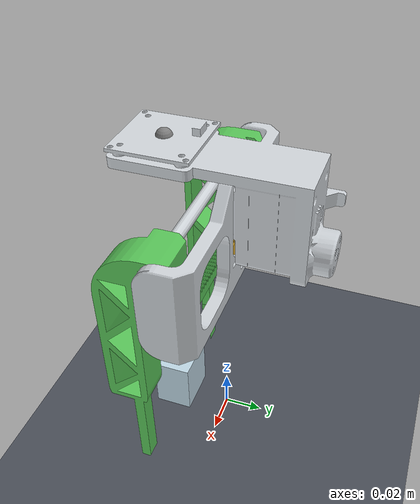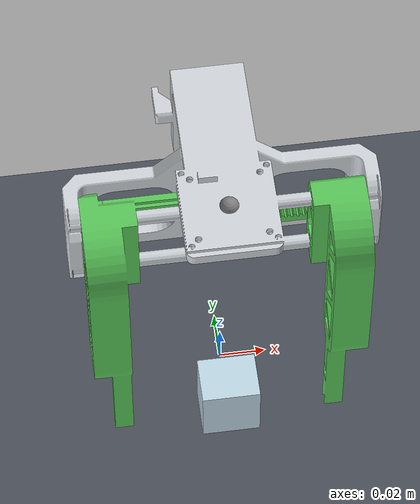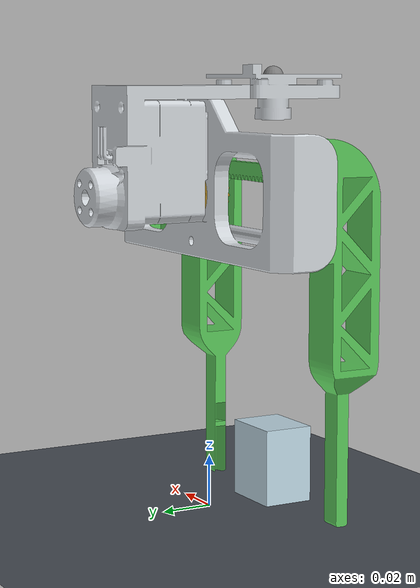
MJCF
<mujoco model="microscope_slide_gripper">
  <compiler angle="degree" autolimits="true"/>
  <option timestep="0.002" integrator="implicitfast"/>

  <include file="gripper_assets.xml"/>

  <asset>
    <texture name="grid" type="2d" builtin="checker" rgb1="0.25 0.27 0.30"
             rgb2="0.32 0.34 0.38" width="512" height="512"/>
    <material name="grid" texture="grid" texrepeat="6 6" reflectance="0.1"/>
    <texture name="sky" type="skybox" builtin="gradient" rgb1="0.35 0.42 0.52"
             rgb2="0.05 0.06 0.08" width="256" height="256"/>
  </asset>

  <visual>
    <global offwidth="1600" offheight="1200"/>
    <quality shadowsize="4096"/>
  </visual>

  <worldbody>
    <light pos="0.3 -0.4 0.8" dir="-0.3 0.4 -0.8" directional="true" diffuse="0.7 0.7 0.7"/>
    <light pos="-0.4 -0.2 0.6" dir="0.4 0.2 -0.6" diffuse="0.35 0.35 0.35"/>
    <geom name="floor" type="plane" size="0.6 0.6 0.01" material="grid"
          friction="1.0 0.01 0.001"/>

    <!-- gripper held above the bench, jaws pointing down (-Y of the CAD frame -> -Z world) -->
    <body name="sg_mount" pos="0 0 0.1225" euler="90 0 0">
      <joint name="lift" type="slide" axis="0 1 0" range="-0.02 0.30" damping="30"/>
      <include file="gripper_body.xml"/>
    </body>

    <!-- test object: 25 mm across the jaws, tall enough for the 30 mm blades -->
    <body name="slide" pos="0 -0.0285 0.015">
      <freejoint/>
      <geom type="box" size="0.0125 0.010 0.015" rgba="0.75 0.85 0.9 0.9"
            mass="0.010" friction="1.2 0.02 0.005"
            solimp="0.98 0.999 0.001" solref="0.004 1"/>
    </body>
  </worldbody>

  <include file="gripper_actuation.xml"/>

  <!-- testbench only: a vertical axis so the grasp can actually be lifted -->
  <actuator>
    <position name="lift" joint="lift" ctrlrange="-0.02 0.30" kp="4000" kv="200" forcerange="-200 200"/>
  </actuator>
</mujoco>

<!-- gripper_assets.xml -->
<mujocoinclude>
  <asset>
    <mesh name="sg_base"      file="meshes/base.stl"      scale="0.001 0.001 0.001"/>
    <mesh name="sg_jaw_right" file="meshes/jaw_right.stl"  scale="0.001 0.001 0.001"/>
    <mesh name="sg_jaw_left"  file="meshes/jaw_left.stl"   scale="0.001 0.001 0.001"/>
    <mesh name="sg_pinion"    file="meshes/pinion.stl"     scale="0.001 0.001 0.001"/>

    <material name="sg_frame" rgba="0.82 0.84 0.86 1"/>
    <material name="sg_jaw"   rgba="0.35 0.78 0.35 1"/>
    <material name="sg_gear"  rgba="0.90 0.70 0.20 1"/>
    <material name="sg_pad"   rgba="0.90 0.30 0.30 0.35"/>
  </asset>
</mujocoinclude>

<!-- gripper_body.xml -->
<mujocoinclude>
  <body name="slide_gripper_base" pos="0 0 0">
    <geom type="mesh" mesh="sg_base" material="sg_frame" mass="0.20"
          contype="0" conaffinity="0" group="2"/>
    <geom name="sg_base_col" type="box" pos="0 0.012 -0.0023" size="0.064 0.036 0.0498"
          mass="0" group="3" rgba="0.5 0.5 0.5 0.25"/>

    <!-- Drive pinion: 18T, 0.8 module, 7.2 mm pitch radius. Kinematically
         redundant (the racks are coupled directly) but kept so the gear
         visibly turns with the jaws. -->
    <body name="sg_pinion" pos="0 0 0">
      <joint name="sg_pinion_joint" type="hinge" axis="0 0 1" limited="false"
             damping="0.001" armature="1e-4"/>
      <geom type="mesh" mesh="sg_pinion" material="sg_gear" mass="0.008"
            contype="0" conaffinity="0" group="2"/>
    </body>

    <body name="sg_jaw_right" pos="0 0 0">
      <joint name="sg_jaw_right_joint" type="slide" axis="-1 0 0" range="0 0.0355"
             damping="2.0" armature="0.001"/>
      <geom type="mesh" mesh="sg_jaw_right" material="sg_jaw" mass="0.035"
            contype="0" conaffinity="0" group="2"/>
      <geom name="sg_pad_right" type="box" pos="0.046 -0.10719 0.0285"
            size="0.004 0.015 0.0025" mass="0" group="3" material="sg_pad"
            friction="1.5 0.02 0.005" solimp="0.98 0.999 0.001" solref="0.004 1"/>
      <geom name="sg_mid_right" type="box" pos="0.050 -0.05856 0.0285"
            size="0.008 0.0136 0.010" mass="0" group="3" material="sg_pad"
            friction="1.5 0.02 0.005" solimp="0.98 0.999 0.001" solref="0.004 1"/>
    </body>

    <body name="sg_jaw_left" pos="0 0 0">
      <joint name="sg_jaw_left_joint" type="slide" axis="1 0 0" range="0 0.0355"
             damping="2.0" armature="0.001"/>
      <geom type="mesh" mesh="sg_jaw_left" material="sg_jaw" mass="0.035"
            contype="0" conaffinity="0" group="2"/>
      <geom name="sg_pad_left" type="box" pos="-0.046 -0.10719 0.0285"
            size="0.004 0.015 0.0025" mass="0" group="3" material="sg_pad"
            friction="1.5 0.02 0.005" solimp="0.98 0.999 0.001" solref="0.004 1"/>
      <geom name="sg_mid_left" type="box" pos="-0.050 -0.05856 0.0285"
            size="0.008 0.0136 0.010" mass="0" group="3" material="sg_pad"
            friction="1.5 0.02 0.005" solimp="0.98 0.999 0.001" solref="0.004 1"/>
    </body>

    <!-- Arducam OV9281 optical frame, from the camera holder in the CAD -->
    <site name="sg_camera" pos="0 0.044 0.028" quat="0.70710678 0.70710678 0 0" size="0.004"/>
    <site name="sg_tcp"    pos="0 -0.10719 0.0285" size="0.004" rgba="1 0 1 1"/>
  </body>
</mujocoinclude>

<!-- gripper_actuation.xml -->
<mujocoinclude>
  <equality>
    <!-- Both racks mesh with the one pinion, so the jaws mirror exactly. -->
    <joint joint1="sg_jaw_left_joint" joint2="sg_jaw_right_joint" polycoef="0 1 0 0 0"
           solimp="0.99 0.9999 0.001" solref="0.01 1"/>
    <!-- pinion angle = -(rack travel) / 7.2 mm pitch radius.  Sign matches the CAD:
         Drive_Pinion runs 0 -> -4.9306 rad (clockwise looking down +Z) to close. -->
    <joint joint1="sg_pinion_joint" joint2="sg_jaw_right_joint" polycoef="0 -138.889 0 0 0"
           solimp="0.99 0.9999 0.001" solref="0.01 1"/>
  </equality>

  <actuator>
    <!-- One STS3215 drives the pinion; commanded here in jaw-travel metres.
         0 = open (84 mm aperture), 0.0355 = closed (13 mm). -->
    <position name="sg_grip" joint="sg_jaw_right_joint" ctrlrange="0 0.0355"
              kp="800" kv="20" forcerange="-80 80"/>
  </actuator>
</mujocoinclude>
